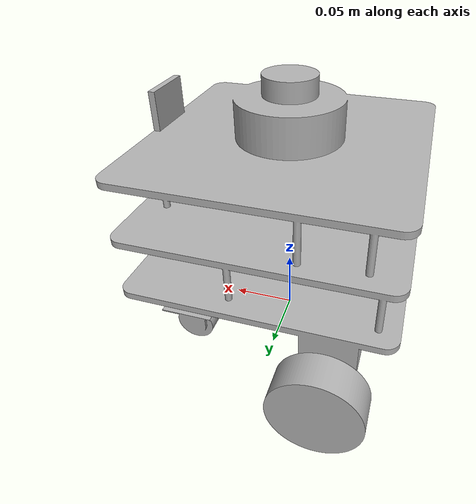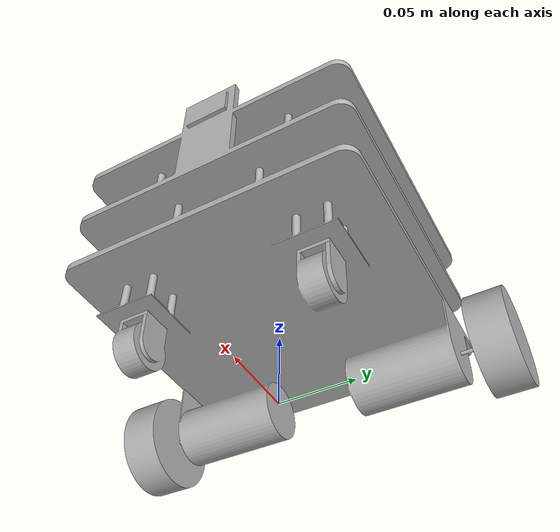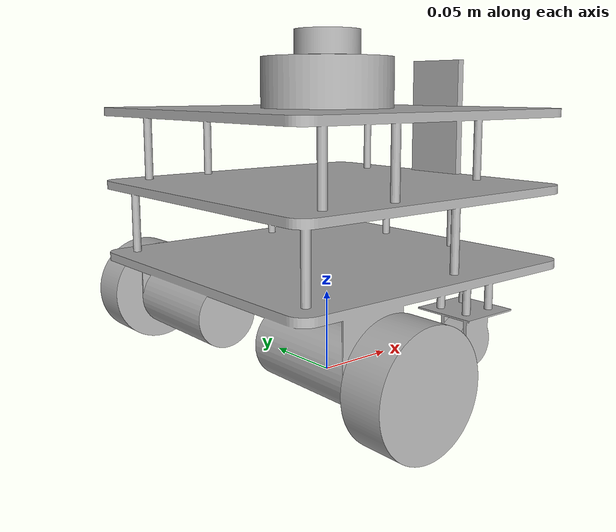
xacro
<?xml version="1.0" ?>
<robot name="bbot_new" xmlns:xacro="http://www.ros.org/wiki/xacro">

<xacro:include filename="$(find bbot_new_description)/urdf/materials.xacro" />
<xacro:include filename="$(find bbot_new_description)/urdf/ros2_control.xacro" />

<link name="base_footprint" />

<link name="base_link">
  <inertial>
    <origin xyz="-0.006057605134441126 -0.00018111500705384267 0.10888749093150545" rpy="0 0 0"/>
    <mass value="1.049122069689706"/>
    <inertia ixx="0.006186" iyy="0.006006" izz="0.00631" ixy="-0.0" iyz="0.0" ixz="-0.000632"/>
  </inertial>
  <visual>
    <origin xyz="0 0 0" rpy="0 0 0"/>
    <geometry>
      <mesh filename="file://$(find bbot_new_description)/meshes/base_link.stl" scale="0.001 0.001 0.001"/>
    </geometry>
    <material name="silver"/>
  </visual>
  <collision>
    <origin xyz="0 0 0" rpy="0 0 0"/>
    <geometry>
      <mesh filename="file://$(find bbot_new_description)/meshes/base_link.stl" scale="0.001 0.001 0.001"/>
    </geometry>
  </collision>
</link>

<link name="lidar">
  <inertial>
    <origin xyz="-3.6197078243972464e-07 -1.1500705524792785e-07 0.007500311251273456" rpy="0 0 0"/>
    <mass value="0.02686061718819272"/>
    <inertia ixx="3e-06" iyy="3e-06" izz="5e-06" ixy="-0.0" iyz="0.0" ixz="0.0"/>
  </inertial>
  <visual>
    <origin xyz="-0.000257 0.000181 -0.193407" rpy="0 0 0"/>
    <geometry>
      <mesh filename="file://$(find bbot_new_description)/meshes/lidar_1.stl" scale="0.001 0.001 0.001"/>
    </geometry>
    <material name="silver"/>
  </visual>
  <collision>
    <origin xyz="-0.000257 0.000181 -0.193407" rpy="0 0 0"/>
    <geometry>
      <mesh filename="file://$(find bbot_new_description)/meshes/lidar_1.stl" scale="0.001 0.001 0.001"/>
    </geometry>
  </collision>
</link>

<link name="rightwheel">
  <inertial>
    <origin xyz="-3.6279034571623514e-07 -0.012500115007057472 3.1181752010306374e-07" rpy="0 0 0"/>
    <mass value="0.11821469543761899"/>
    <inertia ixx="3.7e-05" iyy="6.2e-05" izz="3.7e-05" ixy="-0.0" iyz="0.0" ixz="-0.0"/>
  </inertial>
  <visual>
    <origin xyz="0.054743 0.112681 -0.038407" rpy="0 0 0"/>
    <geometry>
      <mesh filename="file://$(find bbot_new_description)/meshes/rightwheel_1.stl" scale="0.001 0.001 0.001"/>
    </geometry>
    <material name="silver"/>
  </visual>
  <collision>
    <origin xyz="0.054743 0.112681 -0.038407" rpy="0 0 0"/>
    <geometry>
      <mesh filename="file://$(find bbot_new_description)/meshes/rightwheel_1.stl" scale="0.001 0.001 0.001"/>
    </geometry>
  </collision>
</link>

<link name="leftwheel">
  <inertial>
    <origin xyz="-3.627903472150362e-07 0.012499884992944452 3.118175187846739e-07" rpy="0 0 0"/>
    <mass value="0.11821469543761903"/>
    <inertia ixx="3.7e-05" iyy="6.2e-05" izz="3.7e-05" ixy="-0.0" iyz="-0.0" ixz="0.0"/>
  </inertial>
  <visual>
    <origin xyz="0.054743 -0.112319 -0.038407" rpy="0 0 0"/>
    <geometry>
      <mesh filename="file://$(find bbot_new_description)/meshes/leftwheel_1.stl" scale="0.001 0.001 0.001"/>
    </geometry>
    <material name="silver"/>
  </visual>
  <collision>
    <origin xyz="0.054743 -0.112319 -0.038407" rpy="0 0 0"/>
    <geometry>
      <mesh filename="file://$(find bbot_new_description)/meshes/leftwheel_1.stl" scale="0.001 0.001 0.001"/>
    </geometry>
  </collision>
</link>

<joint name="base_basefootprint_joint" type="fixed">
  <origin xyz="0 0 0" rpy="0 0 0"/>
  <parent link="base_link"/>
  <child link="base_footprint"/>
</joint>

<joint name="base_lidar_joint" type="fixed">
  <origin xyz="0.000257 -0.000181 0.194407" rpy="0 0 0"/>
  <parent link="base_link"/>
  <child link="lidar"/>
</joint>

<joint name="base_rightwheel_joint" type="continuous">
  <origin xyz="-0.054743 -0.112681 0.038407" rpy="0 0 0"/>
  <parent link="base_link"/>
  <child link="rightwheel"/>
  <axis xyz="0 1 0"/>
</joint>

<joint name="base_leftwheel_joint" type="continuous">
  <origin xyz="-0.054743 0.112319 0.038407" rpy="0 0 0"/>
  <parent link="base_link"/>
  <child link="leftwheel"/>
  <axis xyz="0 1 0"/>
</joint>

</robot>

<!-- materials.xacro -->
<robot name="bbot_new" xmlns:xacro="http://www.ros.org/wiki/xacro" >

<material name="silver">
  <color rgba="0.700 0.700 0.700 1.000"/>
</material>

</robot>
